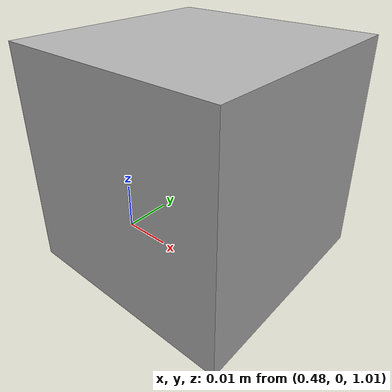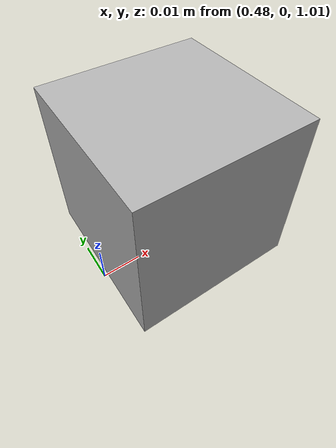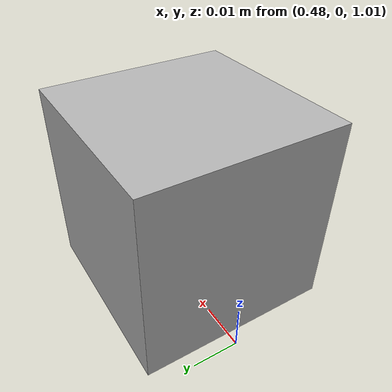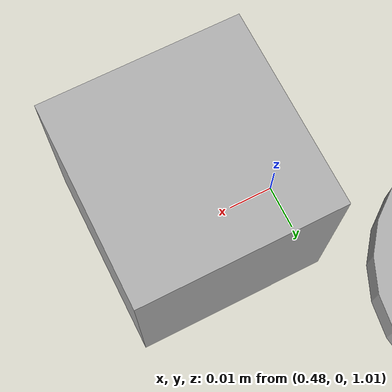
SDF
<sdf version="1.7">
 <world name="default">
  <light name="sun" type="directional">
   <pose>0 0 10 0 -0 0</pose>
   <diffuse>0.8 0.8 0.8 1</diffuse>
   <specular>0.2 0.2 0.2 1</specular>
   <attenuation>
    <range>1000</range>
    <constant>0.9</constant>
    <linear>0.01</linear>
    <quadratic>0.001</quadratic>
   </attenuation>
   <direction>-0.5 0.1 -0.9</direction>
   <spot><inner_angle>0</inner_angle><outer_angle>0</outer_angle><falloff>0</falloff></spot>
  </light>
  <model name="ground_plane">
   <static>1</static>
   <link name="link">
    <collision name="collision">
     <geometry><plane><normal>0 0 1</normal><size>100 100</size></plane></geometry>
     <surface><friction><ode><mu>100</mu><mu2>50</mu2></ode></friction></surface>
    </collision>
    <visual name="visual">
     <cast_shadows>0</cast_shadows>
     <geometry><plane><normal>0 0 1</normal><size>100 100</size></plane></geometry>
     <material>
      <script><uri>file://media/materials/scripts/gazebo.material</uri><n>Gazebo/Grey</n></script>
     </material>
    </visual>
   </link>
  </model>
  <gravity>0 0 -9.8</gravity>
  <magnetic_field>6e-06 2.3e-05 -4.2e-05</magnetic_field>
  <atmosphere type="adiabatic"/>
  <physics type="ode">
   <max_step_size>0.001</max_step_size>
   <real_time_factor>1</real_time_factor>
   <real_time_update_rate>1000</real_time_update_rate>
  </physics>
  <scene><ambient>0.4 0.4 0.4 1</ambient><background>0.7 0.7 0.7 1</background><shadows>1</shadows></scene>
  <audio><device>default</device></audio>
  <spherical_coordinates>
   <surface_model>EARTH_WGS84</surface_model>
   <latitude_deg>0</latitude_deg>
   <longitude_deg>0</longitude_deg>
   <elevation>0</elevation>
   <heading_deg>0</heading_deg>
  </spherical_coordinates>
  <model name="basement">
   <link name="link_0">
    <inertial>
     <mass>1</mass>
     <inertia><ixx>0.145833</ixx><ixy>0</ixy><ixz>0</ixz><iyy>0.145833</iyy><iyz>0</iyz><izz>0.125</izz></inertia>
    </inertial>
    <visual name="visual">
     <geometry><cylinder><radius>0.2</radius><length>0.05</length></cylinder></geometry>
     <material>
      <lighting>1</lighting>
      <script><uri>file://media/materials/scripts/gazebo.material</uri><n>Gazebo/Grey</n></script>
      <shader type="pixel"><normal_map>__default__</normal_map></shader>
      <ambient>0 0 1 1</ambient>
      <diffuse>0.7 0.7 0.7 1</diffuse>
      <specular>0.01 0.01 0.01 1</specular>
      <emissive>0 0 0 1</emissive>
     </material>
    </visual>
    <collision name="collision">
     <geometry><cylinder><radius>0.2</radius><length>0.05</length></cylinder></geometry>
     <surface>
      <friction>
       <ode><mu>1</mu><mu2>1</mu2><fdir1>0 0 0</fdir1><slip1>0</slip1><slip2>0</slip2></ode>
       <torsional>
        <coefficient>1</coefficient>
        <patch_radius>0</patch_radius>
        <surface_radius>0</surface_radius>
        <use_patch_radius>1</use_patch_radius>
        <ode><slip>0</slip></ode>
       </torsional>
      </friction>
      <bounce><restitution_coefficient>0</restitution_coefficient><threshold>1e+06</threshold></bounce>
      <contact>
       <collide_without_contact>0</collide_without_contact>
       <collide_without_contact_bitmask>1</collide_without_contact_bitmask>
       <collide_bitmask>1</collide_bitmask>
       <ode>
        <soft_cfm>0</soft_cfm>
        <soft_erp>0.2</soft_erp>
        <kp>1e+13</kp>
        <kd>1</kd>
        <max_vel>0.01</max_vel>
        <min_depth>0</min_depth>
       </ode>
       <bullet>
        <split_impulse>1</split_impulse>
        <split_impulse_penetration_threshold>-0.01</split_impulse_penetration_threshold>
        <soft_cfm>0</soft_cfm>
        <soft_erp>0.2</soft_erp>
        <kp>1e+13</kp>
        <kd>1</kd>
       </bullet>
      </contact>
     </surface>
    </collision>
   </link>
   <static>0</static>
   <pose>0 0 0.025 0 0 0</pose>
  </model>
  <model name="cube_pick">
   <link name="link_1">
    <inertial>
     <mass>1</mass>
     <inertia>
      <ixx>0.166667</ixx>
      <ixy>0</ixy>
      <ixz>0</ixz>
      <iyy>0.166667</iyy>
      <iyz>0</iyz>
      <izz>0.166667</izz>
     </inertia>
    </inertial>
    <visual name="visual">
     <geometry><box><size>0.04 0.04 0.04</size></box></geometry>
     <material>
      <lighting>1</lighting>
      <script><uri>file://media/materials/scripts/gazebo.material</uri><n>Gazebo/Grey</n></script>
      <shader type="pixel"><normal_map>__default__</normal_map></shader>
      <ambient>0 1 0 1</ambient>
      <diffuse>0.7 0.7 0.7 1</diffuse>
      <specular>0.01 0.01 0.01 1</specular>
      <emissive>0 0 0 1</emissive>
     </material>
    </visual>
    <collision name="collision">
     <geometry><box><size>0.04 0.04 0.04</size></box></geometry>
     <surface>
      <friction>
       <ode><mu>1</mu><mu2>1</mu2><fdir1>0 0 0</fdir1><slip1>0</slip1><slip2>0</slip2></ode>
       <torsional>
        <coefficient>1</coefficient>
        <patch_radius>0</patch_radius>
        <surface_radius>0</surface_radius>
        <use_patch_radius>1</use_patch_radius>
        <ode><slip>0</slip></ode>
       </torsional>
      </friction>
      <bounce><restitution_coefficient>0</restitution_coefficient><threshold>1e+06</threshold></bounce>
      <contact>
       <collide_without_contact>0</collide_without_contact>
       <collide_without_contact_bitmask>1</collide_without_contact_bitmask>
       <collide_bitmask>1</collide_bitmask>
       <ode>
        <soft_cfm>0</soft_cfm>
        <soft_erp>0.2</soft_erp>
        <kp>1e+13</kp>
        <kd>1</kd>
        <max_vel>0.01</max_vel>
        <min_depth>0</min_depth>
       </ode>
       <bullet>
        <split_impulse>1</split_impulse>
        <split_impulse_penetration_threshold>-0.01</split_impulse_penetration_threshold>
        <soft_cfm>0</soft_cfm>
        <soft_erp>0.2</soft_erp>
        <kp>1e+13</kp>
        <kd>1</kd>
       </bullet>
      </contact>
     </surface>
    </collision>
   </link>
   <static>0</static>
   <pose>0.499999 0 1.035 -1.3e-05 -3.8e-05 1.9e-05</pose>
  </model>
  <plugin name="gazebo_link_attacher" filename="libgazebo_link_attacher.so"/>
 </world>
</sdf>
